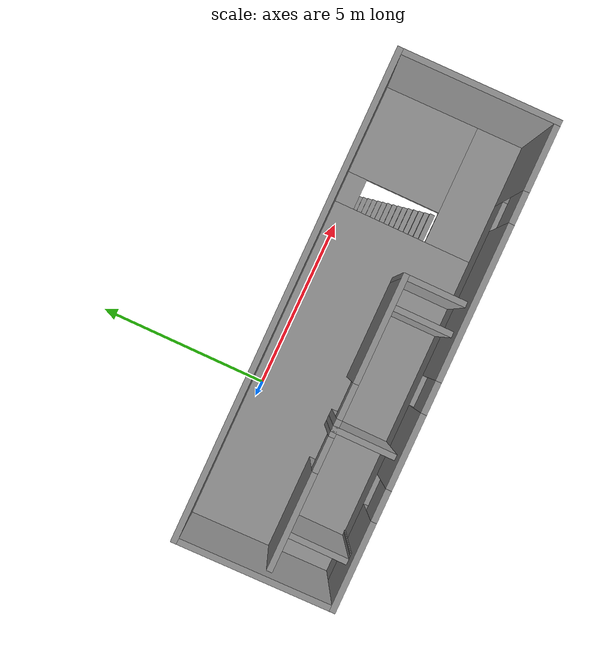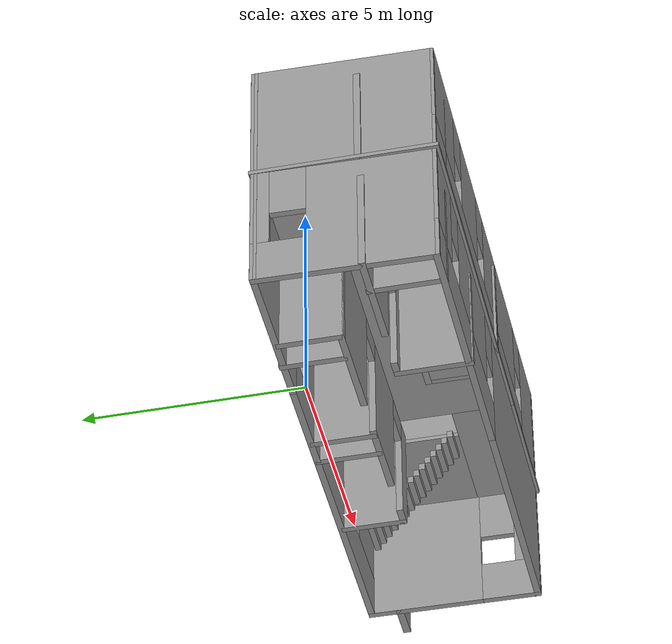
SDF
<?xml version='1.0'?>
<sdf version='1.7'>
  <model name='E7020'>
    <pose>2.43419 -1.66153 0 0 -0 0</pose>
    <link name='Door_2'>
      <collision name='Door_2_Collision'>
        <geometry>
          <box>
            <size>0.9 0.17 2</size>
          </box>
        </geometry>
        <pose>0 0 1 0 -0 0</pose>
      </collision>
      <visual name='Door_2_Visual'>
        <pose>0 0 1 0 -0 0</pose>
        <geometry>
          <box>
            <size>0.9 0.17 2</size>
          </box>
        </geometry>
        <material>
          <script>
            <uri>file://media/materials/scripts/gazebo.material</uri>
            <name>Gazebo/Grey</name>
          </script>
        </material>
      </visual>
      <pose>6.42809 1.33049 0 0 -0 0</pose>
    </link>
    <link name='Floor_0'>
      <pose>-0 -0.000801 3 0 -0 0</pose>
      <visual name='Floor_0_Visual_0'>
        <pose>-1.68723 0 0.05 0 -0 0</pose>
        <geometry>
          <box>
            <size>8.9183 4.1478 0.1</size>
          </box>
        </geometry>
        <material>
          <script>
            <uri>file://media/materials/scripts/gazebo.material</uri>
            <name>Gazebo/Grey</name>
          </script>
          <ambient>1 1 1 1</ambient>
        </material>
        <meta>
          <layer>1</layer>
        </meta>
      </visual>
      <collision name='Floor_0_Collision_0'>
        <geometry>
          <box>
            <size>8.9183 4.1478 0.1</size>
          </box>
        </geometry>
        <pose>-1.68723 0 0.05 0 -0 0</pose>
      </collision>
      <visual name='Floor_0_Visual_1'>
        <pose>4.45915 -1.34484 0.05 0 -0 0</pose>
        <geometry>
          <box>
            <size>3.37446 1.45813 0.1</size>
          </box>
        </geometry>
        <material>
          <script>
            <uri>file://media/materials/scripts/gazebo.material</uri>
            <name>Gazebo/Grey</name>
          </script>
          <ambient>1 1 1 1</ambient>
        </material>
        <meta>
          <layer>1</layer>
        </meta>
      </visual>
      <collision name='Floor_0_Collision_1'>
        <geometry>
          <box>
            <size>3.37446 1.45813 0.1</size>
          </box>
        </geometry>
        <pose>4.45915 -1.34484 0.05 0 -0 0</pose>
      </collision>
      <visual name='Floor_0_Visual_2'>
        <pose>4.8717 0.729063 0.05 0 -0 0</pose>
        <geometry>
          <box>
            <size>2.54936 2.68968 0.1</size>
          </box>
        </geometry>
        <material>
          <script>
            <uri>file://media/materials/scripts/gazebo.material</uri>
            <name>Gazebo/Grey</name>
          </script>
          <ambient>1 1 1 1</ambient>
        </material>
        <meta>
          <layer>1</layer>
        </meta>
      </visual>
      <collision name='Floor_0_Collision_2'>
        <geometry>
          <box>
            <size>2.54936 2.68968 0.1</size>
          </box>
        </geometry>
        <pose>4.8717 0.729063 0.05 0 -0 0</pose>
      </collision>
      <visual name='Floor_0_Visual_3'>
        <pose>3.18447 1.73574 0.05 0 -0 0</pose>
        <geometry>
          <box>
            <size>0.825099 0.676332 0.1</size>
          </box>
        </geometry>
        <material>
          <script>
            <uri>file://media/materials/scripts/gazebo.material</uri>
            <name>Gazebo/Grey</name>
          </script>
          <ambient>1 1 1 1</ambient>
        </material>
        <meta>
          <layer>1</layer>
        </meta>
      </visual>
      <collision name='Floor_0_Collision_3'>
        <geometry>
          <box>
            <size>0.825099 0.676332 0.1</size>
          </box>
        </geometry>
        <pose>3.18447 1.73574 0.05 0 -0 0</pose>
      </collision>
    </link>
    <link name='Stairs_1'>
      <visual name='Stairs_1_Visual_0'>
        <pose>3.18447 1.32966 0.083333 0 -0 0</pose>
        <geometry>
          <box>
            <size>0.825099 0.134223 0.166667</size>
          </box>
        </geometry>
        <material>
          <script>
            <uri>file://media/materials/scripts/gazebo.material</uri>
            <name>Gazebo/Grey</name>
          </script>
          <ambient>1 1 1 1</ambient>
        </material>
        <meta>
          <layer>0</layer>
        </meta>
      </visual>
      <collision name='Stairs_1_Collision_0'>
        <geometry>
          <box>
            <size>0.825099 0.134223 0.166667</size>
          </box>
        </geometry>
        <pose>3.18447 1.32966 0.083333 0 -0 0</pose>
      </collision>
      <visual name='Stairs_1_Visual_1'>
        <pose>3.18447 1.19543 0.25 0 -0 0</pose>
        <geometry>
          <box>
            <size>0.825099 0.134223 0.166667</size>
          </box>
        </geometry>
        <material>
          <script>
            <uri>file://media/materials/scripts/gazebo.material</uri>
            <name>Gazebo/Grey</name>
          </script>
          <ambient>1 1 1 1</ambient>
        </material>
        <meta>
          <layer>0</layer>
        </meta>
      </visual>
      <collision name='Stairs_1_Collision_1'>
        <geometry>
          <box>
            <size>0.825099 0.134223 0.166667</size>
          </box>
        </geometry>
        <pose>3.18447 1.19543 0.25 0 -0 0</pose>
      </collision>
      <visual name='Stairs_1_Visual_2'>
        <pose>3.18447 1.06121 0.416667 0 -0 0</pose>
        <geometry>
          <box>
            <size>0.825099 0.134223 0.166667</size>
          </box>
        </geometry>
        <material>
          <script>
            <uri>file://media/materials/scripts/gazebo.material</uri>
            <name>Gazebo/Grey</name>
          </script>
          <ambient>1 1 1 1</ambient>
        </material>
        <meta>
          <layer>0</layer>
        </meta>
      </visual>
      <collision name='Stairs_1_Collision_2'>
        <geometry>
          <box>
            <size>0.825099 0.134223 0.166667</size>
          </box>
        </geometry>
        <pose>3.18447 1.06121 0.416667 0 -0 0</pose>
      </collision>
      <visual name='Stairs_1_Visual_3'>
        <pose>3.18447 0.926988 0.583333 0 -0 0</pose>
        <geometry>
          <box>
            <size>0.825099 0.134223 0.166667</size>
          </box>
        </geometry>
        <material>
          <script>
            <uri>file://media/materials/scripts/gazebo.material</uri>
            <name>Gazebo/Grey</name>
          </script>
          <ambient>1 1 1 1</ambient>
        </material>
        <meta>
          <layer>0</layer>
        </meta>
      </visual>
      <collision name='Stairs_1_Collision_3'>
        <geometry>
          <box>
            <size>0.825099 0.134223 0.166667</size>
          </box>
        </geometry>
        <pose>3.18447 0.926988 0.583333 0 -0 0</pose>
      </collision>
      <visual name='Stairs_1_Visual_4'>
        <pose>3.18447 0.792765 0.75 0 -0 0</pose>
        <geometry>
          <box>
            <size>0.825099 0.134223 0.166667</size>
          </box>
        </geometry>
        <material>
          <script>
            <uri>file://media/materials/scripts/gazebo.material</uri>
            <name>Gazebo/Grey</name>
          </script>
          <ambient>1 1 1 1</ambient>
        </material>
        <meta>
          <layer>0</layer>
        </meta>
      </visual>
      <collision name='Stairs_1_Collision_4'>
        <geometry>
          <box>
            <size>0.825099 0.134223 0.166667</size>
          </box>
        </geometry>
        <pose>3.18447 0.792765 0.75 0 -0 0</pose>
      </collision>
      <visual name='Stairs_1_Visual_5'>
        <pose>3.18447 0.658542 0.916667 0 -0 0</pose>
        <geometry>
          <box>
            <size>0.825099 0.134223 0.166667</size>
          </box>
        </geometry>
        <material>
          <script>
            <uri>file://media/materials/scripts/gazebo.material</uri>
            <name>Gazebo/Grey</name>
          </script>
          <ambient>1 1 1 1</ambient>
        </material>
        <meta>
          <layer>0</layer>
        </meta>
      </visual>
      <collision name='Stairs_1_Collision_5'>
        <geometry>
          <box>
            <size>0.825099 0.134223 0.166667</size>
          </box>
        </geometry>
        <pose>3.18447 0.658542 0.916667 0 -0 0</pose>
      </collision>
      <visual name='Stairs_1_Visual_6'>
        <pose>3.18447 0.524319 1.08333 0 -0 0</pose>
        <geometry>
          <box>
            <size>0.825099 0.134223 0.166667</size>
          </box>
        </geometry>
        <material>
          <script>
            <uri>file://media/materials/scripts/gazebo.material</uri>
            <name>Gazebo/Grey</name>
          </script>
          <ambient>1 1 1 1</ambient>
        </material>
        <meta>
          <layer>0</layer>
        </meta>
      </visual>
      <collision name='Stairs_1_Collision_6'>
        <geometry>
          <box>
            <size>0.825099 0.134223 0.166667</size>
          </box>
        </geometry>
        <pose>3.18447 0.524319 1.08333 0 -0 0</pose>
      </collision>
      <visual name='Stairs_1_Visual_7'>
        <pose>3.18447 0.390096 1.25 0 -0 0</pose>
        <geometry>
          <box>
            <size>0.825099 0.134223 0.166667</size>
          </box>
        </geometry>
        <material>
          <script>
            <uri>file://media/materials/scripts/gazebo.material</uri>
            <name>Gazebo/Grey</name>
          </script>
          <ambient>1 1 1 1</ambient>
        </material>
        <meta>
          <layer>0</layer>
        </meta>
      </visual>
      <collision name='Stairs_1_Collision_7'>
        <geometry>
          <box>
            <size>0.825099 0.134223 0.166667</size>
          </box>
        </geometry>
        <pose>3.18447 0.390096 1.25 0 -0 0</pose>
      </collision>
      <visual name='Stairs_1_Visual_8'>
        <pose>3.18447 0.255873 1.41667 0 -0 0</pose>
        <geometry>
          <box>
            <size>0.825099 0.134223 0.166667</size>
          </box>
        </geometry>
        <material>
          <script>
            <uri>file://media/materials/scripts/gazebo.material</uri>
            <name>Gazebo/Grey</name>
          </script>
          <ambient>1 1 1 1</ambient>
        </material>
        <meta>
          <layer>0</layer>
        </meta>
      </visual>
      <collision name='Stairs_1_Collision_8'>
        <geometry>
          <box>
            <size>0.825099 0.134223 0.166667</size>
          </box>
        </geometry>
        <pose>3.18447 0.255873 1.41667 0 -0 0</pose>
      </collision>
      <visual name='Stairs_1_Visual_9'>
        <pose>3.18447 0.12165 1.58333 0 -0 0</pose>
        <geometry>
          <box>
            <size>0.825099 0.134223 0.166667</size>
          </box>
        </geometry>
        <material>
          <script>
            <uri>file://media/materials/scripts/gazebo.material</uri>
            <name>Gazebo/Grey</name>
          </script>
          <ambient>1 1 1 1</ambient>
        </material>
        <meta>
          <layer>0</layer>
        </meta>
      </visual>
      <collision name='Stairs_1_Collision_9'>
        <geometry>
          <box>
            <size>0.825099 0.134223 0.166667</size>
          </box>
        </geometry>
        <pose>3.18447 0.12165 1.58333 0 -0 0</pose>
      </collision>
      <visual name='Stairs_1_Visual_10'>
        <pose>3.18447 -0.012573 1.75 0 -0 0</pose>
        <geometry>
          <box>
            <size>0.825099 0.134223 0.166667</size>
          </box>
        </geometry>
        <material>
          <script>
            <uri>file://media/materials/scripts/gazebo.material</uri>
            <name>Gazebo/Grey</name>
          </script>
          <ambient>1 1 1 1</ambient>
        </material>
        <meta>
          <layer>0</layer>
        </meta>
      </visual>
      <collision name='Stairs_1_Collision_10'>
        <geometry>
          <box>
            <size>0.825099 0.134223 0.166667</size>
          </box>
        </geometry>
        <pose>3.18447 -0.012573 1.75 0 -0 0</pose>
      </collision>
      <visual name='Stairs_1_Visual_11'>
        <pose>3.18447 -0.146796 1.91667 0 -0 0</pose>
        <geometry>
          <box>
            <size>0.825099 0.134223 0.166667</size>
          </box>
        </geometry>
        <material>
          <script>
            <uri>file://media/materials/scripts/gazebo.material</uri>
            <name>Gazebo/Grey</name>
          </script>
          <ambient>1 1 1 1</ambient>
        </material>
        <meta>
          <layer>0</layer>
        </meta>
      </visual>
      <collision name='Stairs_1_Collision_11'>
        <geometry>
          <box>
            <size>0.825099 0.134223 0.166667</size>
          </box>
        </geometry>
        <pose>3.18447 -0.146796 1.91667 0 -0 0</pose>
      </collision>
      <visual name='Stairs_1_Visual_12'>
        <pose>3.18447 -0.281019 2.08333 0 -0 0</pose>
        <geometry>
          <box>
            <size>0.825099 0.134223 0.166667</size>
          </box>
        </geometry>
        <material>
          <script>
            <uri>file://media/materials/scripts/gazebo.material</uri>
            <name>Gazebo/Grey</name>
          </script>
          <ambient>1 1 1 1</ambient>
        </material>
        <meta>
          <layer>0</layer>
        </meta>
      </visual>
      <collision name='Stairs_1_Collision_12'>
        <geometry>
          <box>
            <size>0.825099 0.134223 0.166667</size>
          </box>
        </geometry>
        <pose>3.18447 -0.281019 2.08333 0 -0 0</pose>
      </collision>
      <visual name='Stairs_1_Visual_13'>
        <pose>3.18447 -0.415242 2.25 0 -0 0</pose>
        <geometry>
          <box>
            <size>0.825099 0.134223 0.166667</size>
          </box>
        </geometry>
        <material>
          <script>
            <uri>file://media/materials/scripts/gazebo.material</uri>
            <name>Gazebo/Grey</name>
          </script>
          <ambient>1 1 1 1</ambient>
        </material>
        <meta>
          <layer>0</layer>
        </meta>
      </visual>
      <collision name='Stairs_1_Collision_13'>
        <geometry>
          <box>
            <size>0.825099 0.134223 0.166667</size>
          </box>
        </geometry>
        <pose>3.18447 -0.415242 2.25 0 -0 0</pose>
      </collision>
      <visual name='Stairs_1_Visual_14'>
        <pose>3.18447 -0.549465 2.41667 0 -0 0</pose>
        <geometry>
          <box>
            <size>0.825099 0.134223 0.166667</size>
          </box>
        </geometry>
        <material>
          <script>
            <uri>file://media/materials/scripts/gazebo.material</uri>
            <name>Gazebo/Grey</name>
          </script>
          <ambient>1 1 1 1</ambient>
        </material>
        <meta>
          <layer>0</layer>
        </meta>
      </visual>
      <collision name='Stairs_1_Collision_14'>
        <geometry>
          <box>
            <size>0.825099 0.134223 0.166667</size>
          </box>
        </geometry>
        <pose>3.18447 -0.549465 2.41667 0 -0 0</pose>
      </collision>
    </link>
    <link name='Wall_10'>
      <pose>6.05581 0.03503 0 0 -0 -1.56315</pose>
      <visual name='Wall_10_Visual_0'>
        <pose>-0.679473 0 1.5 0 -0 0</pose>
        <geometry>
          <box>
            <size>2.71617 0.15 3</size>
          </box>
        </geometry>
        <material>
          <script>
            <uri>file://media/materials/scripts/gazebo.material</uri>
            <name>Gazebo/Grey</name>
          </script>
          <ambient>1 1 1 1</ambient>
        </material>
        <meta>
          <layer>0</layer>
        </meta>
      </visual>
      <collision name='Wall_10_Collision_0'>
        <geometry>
          <box>
            <size>2.71617 0.15 3</size>
          </box>
        </geometry>
        <pose>-0.679473 0 1.5 0 -0 0</pose>
      </collision>
      <visual name='Wall_10_Visual_1'>
        <pose>1.35808 0 0.5 0 -0 0</pose>
        <geometry>
          <box>
            <size>1.35895 0.15 1</size>
          </box>
        </geometry>
        <material>
          <script>
            <uri>file://media/materials/scripts/gazebo.material</uri>
            <name>Gazebo/Grey</name>
          </script>
          <ambient>1 1 1 1</ambient>
        </material>
        <meta>
          <layer>0</layer>
        </meta>
      </visual>
      <collision name='Wall_10_Collision_1'>
        <geometry>
          <box>
            <size>1.35895 0.15 1</size>
          </box>
        </geometry>
        <pose>1.35808 0 0.5 0 -0 0</pose>
      </collision>
      <visual name='Wall_10_Visual_2'>
        <pose>1.75808 0 2 0 -0 0</pose>
        <geometry>
          <box>
            <size>0.558947 0.15 2</size>
          </box>
        </geometry>
        <material>
          <script>
            <uri>file://media/materials/scripts/gazebo.material</uri>
            <name>Gazebo/Grey</name>
          </script>
          <ambient>1 1 1 1</ambient>
        </material>
        <meta>
          <layer>0</layer>
        </meta>
      </visual>
      <collision name='Wall_10_Collision_2'>
        <geometry>
          <box>
            <size>0.558947 0.15 2</size>
          </box>
        </geometry>
        <pose>1.75808 0 2 0 -0 0</pose>
      </collision>
      <visual name='Wall_10_Visual_3'>
        <pose>1.07861 0 2.4 0 -0 0</pose>
        <geometry>
          <box>
            <size>0.8 0.15 1.2</size>
          </box>
        </geometry>
        <material>
          <script>
            <uri>file://media/materials/scripts/gazebo.material</uri>
            <name>Gazebo/Grey</name>
          </script>
          <ambient>1 1 1 1</ambient>
        </material>
        <meta>
          <layer>0</layer>
        </meta>
      </visual>
      <collision name='Wall_10_Collision_3'>
        <geometry>
          <box>
            <size>0.8 0.15 1.2</size>
          </box>
        </geometry>
        <pose>1.07861 0 2.4 0 -0 0</pose>
      </collision>
    </link>
    <link name='Wall_11'>
      <pose>0.041307 -1.92997 0 0 -0 -3.14118</pose>
      <visual name='Wall_11_Visual_0'>
        <pose>-3.15727 0 1.5 0 -0 0</pose>
        <geometry>
          <box>
            <size>5.8951 0.15 3</size>
          </box>
        </geometry>
        <material>
          <script>
            <uri>file://media/materials/scripts/gazebo.material</uri>
            <name>Gazebo/Grey</name>
          </script>
          <ambient>1 1 1 1</ambient>
        </material>
        <meta>
          <layer>0</layer>
        </meta>
      </visual>
      <collision name='Wall_11_Collision_0'>
        <geometry>
          <box>
            <size>5.8951 0.15 3</size>
          </box>
        </geometry>
        <pose>-3.15727 0 1.5 0 -0 0</pose>
      </collision>
      <visual name='Wall_11_Visual_1'>
        <pose>2.94755 0 0.5 0 -0 0</pose>
        <geometry>
          <box>
            <size>6.31453 0.15 1</size>
          </box>
        </geometry>
        <material>
          <script>
            <uri>file://media/materials/scripts/gazebo.material</uri>
            <name>Gazebo/Grey</name>
          </script>
          <ambient>1 1 1 1</ambient>
        </material>
        <meta>
          <layer>0</layer>
        </meta>
      </visual>
      <collision name='Wall_11_Collision_1'>
        <geometry>
          <box>
            <size>6.31453 0.15 1</size>
          </box>
        </geometry>
        <pose>2.94755 0 0.5 0 -0 0</pose>
      </collision>
      <visual name='Wall_11_Visual_2'>
        <pose>2.19157 0 2 0 -0 0</pose>
        <geometry>
          <box>
            <size>3.20257 0.15 2</size>
          </box>
        </geometry>
        <material>
          <script>
            <uri>file://media/materials/scripts/gazebo.material</uri>
            <name>Gazebo/Grey</name>
          </script>
          <ambient>1 1 1 1</ambient>
        </material>
        <meta>
          <layer>0</layer>
        </meta>
      </visual>
      <collision name='Wall_11_Collision_2'>
        <geometry>
          <box>
            <size>3.20257 0.15 2</size>
          </box>
        </geometry>
        <pose>2.19157 0 2 0 -0 0</pose>
      </collision>
      <visual name='Wall_11_Visual_3'>
        <pose>5.34883 0 2 0 -0 0</pose>
        <geometry>
          <box>
            <size>1.51196 0.15 2</size>
          </box>
        </geometry>
        <material>
          <script>
            <uri>file://media/materials/scripts/gazebo.material</uri>
            <name>Gazebo/Grey</name>
          </script>
          <ambient>1 1 1 1</ambient>
        </material>
        <meta>
          <layer>0</layer>
        </meta>
      </visual>
      <collision name='Wall_11_Collision_3'>
        <geometry>
          <box>
            <size>1.51196 0.15 2</size>
          </box>
        </geometry>
        <pose>5.34883 0 2 0 -0 0</pose>
      </collision>
      <visual name='Wall_11_Visual_4'>
        <pose>0.190282 0 2.4 0 -0 0</pose>
        <geometry>
          <box>
            <size>0.8 0.15 1.2</size>
          </box>
        </geometry>
        <material>
          <script>
            <uri>file://media/materials/scripts/gazebo.material</uri>
            <name>Gazebo/Grey</name>
          </script>
          <ambient>1 1 1 1</ambient>
        </material>
        <meta>
          <layer>0</layer>
        </meta>
      </visual>
      <collision name='Wall_11_Collision_4'>
        <geometry>
          <box>
            <size>0.8 0.15 1.2</size>
          </box>
        </geometry>
        <pose>0.190282 0 2.4 0 -0 0</pose>
      </collision>
      <visual name='Wall_11_Visual_5'>
        <pose>4.19285 0 2.4 0 -0 0</pose>
        <geometry>
          <box>
            <size>0.8 0.15 1.2</size>
          </box>
        </geometry>
        <material>
          <script>
            <uri>file://media/materials/scripts/gazebo.material</uri>
            <name>Gazebo/Grey</name>
          </script>
          <ambient>1 1 1 1</ambient>
        </material>
        <meta>
          <layer>0</layer>
        </meta>
      </visual>
      <collision name='Wall_11_Collision_5'>
        <geometry>
          <box>
            <size>0.8 0.15 1.2</size>
          </box>
        </geometry>
        <pose>4.19285 0 2.4 0 -0 0</pose>
      </collision>
    </link>
    <link name='Wall_12'>
      <pose>-6.02619 0.01503 0 0 -0 1.59031</pose>
      <visual name='Wall_12_Visual_0'>
        <pose>-0.608642 0 1.5 0 -0 0</pose>
        <geometry>
          <box>
            <size>2.82846 0.15 3</size>
          </box>
        </geometry>
        <material>
          <script>
            <uri>file://media/materials/scripts/gazebo.material</uri>
            <name>Gazebo/Grey</name>
          </script>
          <ambient>1 1 1 1</ambient>
        </material>
        <meta>
          <layer>0</layer>
        </meta>
      </visual>
      <collision name='Wall_12_Collision_0'>
        <geometry>
          <box>
            <size>2.82846 0.15 3</size>
          </box>
        </geometry>
        <pose>-0.608642 0 1.5 0 -0 0</pose>
      </collision>
      <visual name='Wall_12_Visual_1'>
        <pose>1.41423 0 0.5 0 -0 0</pose>
        <geometry>
          <box>
            <size>1.21728 0.15 1</size>
          </box>
        </geometry>
        <material>
          <script>
            <uri>file://media/materials/scripts/gazebo.material</uri>
            <name>Gazebo/Grey</name>
          </script>
          <ambient>1 1 1 1</ambient>
        </material>
        <meta>
          <layer>0</layer>
        </meta>
      </visual>
      <collision name='Wall_12_Collision_1'>
        <geometry>
          <box>
            <size>1.21728 0.15 1</size>
          </box>
        </geometry>
        <pose>1.41423 0 0.5 0 -0 0</pose>
      </collision>
      <visual name='Wall_12_Visual_2'>
        <pose>1.81423 0 2 0 -0 0</pose>
        <geometry>
          <box>
            <size>0.417283 0.15 2</size>
          </box>
        </geometry>
        <material>
          <script>
            <uri>file://media/materials/scripts/gazebo.material</uri>
            <name>Gazebo/Grey</name>
          </script>
          <ambient>1 1 1 1</ambient>
        </material>
        <meta>
          <layer>0</layer>
        </meta>
      </visual>
      <collision name='Wall_12_Collision_2'>
        <geometry>
          <box>
            <size>0.417283 0.15 2</size>
          </box>
        </geometry>
        <pose>1.81423 0 2 0 -0 0</pose>
      </collision>
      <visual name='Wall_12_Visual_3'>
        <pose>1.20559 0 2.4 0 -0 0</pose>
        <geometry>
          <box>
            <size>0.8 0.15 1.2</size>
          </box>
        </geometry>
        <material>
          <script>
            <uri>file://media/materials/scripts/gazebo.material</uri>
            <name>Gazebo/Grey</name>
          </script>
          <ambient>1 1 1 1</ambient>
        </material>
        <meta>
          <layer>0</layer>
        </meta>
      </visual>
      <collision name='Wall_12_Collision_3'>
        <geometry>
          <box>
            <size>0.8 0.15 1.2</size>
          </box>
        </geometry>
        <pose>1.20559 0 2.4 0 -0 0</pose>
      </collision>
    </link>
    <link name='Wall_14'>
      <collision name='Wall_14_Collision'>
        <geometry>
          <box>
            <size>12.2551 0.15 3</size>
          </box>
        </geometry>
        <pose>0 0 1.5 0 -0 0</pose>
      </collision>
      <visual name='Wall_14_Visual'>
        <pose>0 0 1.5 0 -0 0</pose>
        <geometry>
          <box>
            <size>12.2551 0.15 3</size>
          </box>
        </geometry>
        <material>
          <script>
            <uri>file://media/materials/scripts/gazebo.material</uri>
            <name>Gazebo/Grey</name>
          </script>
          <ambient>1 1 1 1</ambient>
        </material>
        <meta>
          <layer>1</layer>
        </meta>
      </visual>
      <pose>-0.011693 1.98003 3 0 -0 0.002891</pose>
    </link>
    <link name='Wall_15'>
      <collision name='Wall_15_Collision'>
        <geometry>
          <box>
            <size>4.07512 0.15 3</size>
          </box>
        </geometry>
        <pose>0 0 1.5 0 -0 0</pose>
      </collision>
      <visual name='Wall_15_Visual'>
        <pose>0 0 1.5 0 -0 0</pose>
        <geometry>
          <box>
            <size>4.07512 0.15 3</size>
          </box>
        </geometry>
        <material>
          <script>
            <uri>file://media/materials/scripts/gazebo.material</uri>
            <name>Gazebo/Grey</name>
          </script>
          <ambient>1 1 1 1</ambient>
        </material>
        <meta>
          <layer>1</layer>
        </meta>
      </visual>
      <pose>6.05581 0.03503 3 0 -0 -1.56315</pose>
    </link>
    <link name='Wall_16'>
      <pose>0.041307 -1.92997 3 0 -0 -3.14118</pose>
      <visual name='Wall_16_Visual_0'>
        <pose>-5.20681 0 1.5 0 -0 0</pose>
        <geometry>
          <box>
            <size>1.79539 0.15 3</size>
          </box>
        </geometry>
        <material>
          <script>
            <uri>file://media/materials/scripts/gazebo.material</uri>
            <name>Gazebo/Grey</name>
          </script>
          <ambient>1 1 1 1</ambient>
        </material>
        <meta>
          <layer>1</layer>
        </meta>
      </visual>
      <collision name='Wall_16_Collision_0'>
        <geometry>
          <box>
            <size>1.79539 0.15 3</size>
          </box>
        </geometry>
        <pose>-5.20681 0 1.5 0 -0 0</pose>
      </collision>
      <visual name='Wall_16_Visual_1'>
        <pose>0.897696 0 0.5 0 -0 0</pose>
        <geometry>
          <box>
            <size>10.4136 0.15 1</size>
          </box>
        </geometry>
        <material>
          <script>
            <uri>file://media/materials/scripts/gazebo.material</uri>
            <name>Gazebo/Grey</name>
          </script>
          <ambient>1 1 1 1</ambient>
        </material>
        <meta>
          <layer>1</layer>
        </meta>
      </visual>
      <collision name='Wall_16_Collision_1'>
        <geometry>
          <box>
            <size>10.4136 0.15 1</size>
          </box>
        </geometry>
        <pose>0.897696 0 0.5 0 -0 0</pose>
      </collision>
      <visual name='Wall_16_Visual_2'>
        <pose>-1.55669 0 2 0 -0 0</pose>
        <geometry>
          <box>
            <size>3.90483 0.15 2</size>
          </box>
        </geometry>
        <material>
          <script>
            <uri>file://media/materials/scripts/gazebo.material</uri>
            <name>Gazebo/Grey</name>
          </script>
          <ambient>1 1 1 1</ambient>
        </material>
        <meta>
          <layer>1</layer>
        </meta>
      </visual>
      <collision name='Wall_16_Collision_2'>
        <geometry>
          <box>
            <size>3.90483 0.15 2</size>
          </box>
        </geometry>
        <pose>-1.55669 0 2 0 -0 0</pose>
      </collision>
      <visual name='Wall_16_Visual_3'>
        <pose>2.13371 0 2 0 -0 0</pose>
        <geometry>
          <box>
            <size>1.87598 0.15 2</size>
          </box>
        </geometry>
        <material>
          <script>
            <uri>file://media/materials/scripts/gazebo.material</uri>
            <name>Gazebo/Grey</name>
          </script>
          <ambient>1 1 1 1</ambient>
        </material>
        <meta>
          <layer>1</layer>
        </meta>
      </visual>
      <collision name='Wall_16_Collision_3'>
        <geometry>
          <box>
            <size>1.87598 0.15 2</size>
          </box>
        </geometry>
        <pose>2.13371 0 2 0 -0 0</pose>
      </collision>
      <visual name='Wall_16_Visual_4'>
        <pose>4.9881 0 2 0 -0 0</pose>
        <geometry>
          <box>
            <size>2.2328 0.15 2</size>
          </box>
        </geometry>
        <material>
          <script>
            <uri>file://media/materials/scripts/gazebo.material</uri>
            <name>Gazebo/Grey</name>
          </script>
          <ambient>1 1 1 1</ambient>
        </material>
        <meta>
          <layer>1</layer>
        </meta>
      </visual>
      <collision name='Wall_16_Collision_4'>
        <geometry>
          <box>
            <size>2.2328 0.15 2</size>
          </box>
        </geometry>
        <pose>4.9881 0 2 0 -0 0</pose>
      </collision>
      <visual name='Wall_16_Visual_5'>
        <pose>-3.90911 0 2.4 0 -0 0</pose>
        <geometry>
          <box>
            <size>0.8 0.15 1.2</size>
          </box>
        </geometry>
        <material>
          <script>
            <uri>file://media/materials/scripts/gazebo.material</uri>
            <name>Gazebo/Grey</name>
          </script>
          <ambient>1 1 1 1</ambient>
        </material>
        <meta>
          <layer>1</layer>
        </meta>
      </visual>
      <collision name='Wall_16_Collision_5'>
        <geometry>
          <box>
            <size>0.8 0.15 1.2</size>
          </box>
        </geometry>
        <pose>-3.90911 0 2.4 0 -0 0</pose>
      </collision>
      <visual name='Wall_16_Visual_6'>
        <pose>0.795724 0 2.4 0 -0 0</pose>
        <geometry>
          <box>
            <size>0.8 0.15 1.2</size>
          </box>
        </geometry>
        <material>
          <script>
            <uri>file://media/materials/scripts/gazebo.material</uri>
            <name>Gazebo/Grey</name>
          </script>
          <ambient>1 1 1 1</ambient>
        </material>
        <meta>
          <layer>1</layer>
        </meta>
      </visual>
      <collision name='Wall_16_Collision_6'>
        <geometry>
          <box>
            <size>0.8 0.15 1.2</size>
          </box>
        </geometry>
        <pose>0.795724 0 2.4 0 -0 0</pose>
      </collision>
      <visual name='Wall_16_Visual_7'>
        <pose>3.4717 0 2.4 0 -0 0</pose>
        <geometry>
          <box>
            <size>0.8 0.15 1.2</size>
          </box>
        </geometry>
        <material>
          <script>
            <uri>file://media/materials/scripts/gazebo.material</uri>
            <name>Gazebo/Grey</name>
          </script>
          <ambient>1 1 1 1</ambient>
        </material>
        <meta>
          <layer>1</layer>
        </meta>
      </visual>
      <collision name='Wall_16_Collision_7'>
        <geometry>
          <box>
            <size>0.8 0.15 1.2</size>
          </box>
        </geometry>
        <pose>3.4717 0 2.4 0 -0 0</pose>
      </collision>
    </link>
    <link name='Wall_17'>
      <collision name='Wall_17_Collision'>
        <geometry>
          <box>
            <size>4.04574 0.15 3</size>
          </box>
        </geometry>
        <pose>0 0 1.5 0 -0 0</pose>
      </collision>
      <visual name='Wall_17_Visual'>
        <pose>0 0 1.5 0 -0 0</pose>
        <geometry>
          <box>
            <size>4.04574 0.15 3</size>
          </box>
        </geometry>
        <material>
          <script>
            <uri>file://media/materials/scripts/gazebo.material</uri>
            <name>Gazebo/Grey</name>
          </script>
          <ambient>1 1 1 1</ambient>
        </material>
        <meta>
          <layer>1</layer>
        </meta>
      </visual>
      <pose>-6.02619 0.01503 3 0 -0 1.59031</pose>
    </link>
    <link name='Wall_18'>
      <collision name='Wall_18_Collision'>
        <geometry>
          <box>
            <size>1.5 0.15 2.5</size>
          </box>
        </geometry>
        <pose>0 0 1.25 0 -0 0</pose>
      </collision>
      <visual name='Wall_18_Visual'>
        <pose>0 0 1.25 0 -0 0</pose>
        <geometry>
          <box>
            <size>1.5 0.15 2.5</size>
          </box>
        </geometry>
        <material>
          <script>
            <uri>file://media/materials/scripts/gazebo.material</uri>
            <name>Gazebo/Grey</name>
          </script>
          <ambient>1 1 1 1</ambient>
        </material>
        <meta>
          <layer>0</layer>
        </meta>
      </visual>
      <pose>2.69114 1.23399 0 0 -0 -1.5708</pose>
    </link>
    <link name='Wall_19'>
      <pose>-0.608857 0.558986 0 0 -0 3.14159</pose>
      <visual name='Wall_19_Visual_0'>
        <pose>-3.1165 0 1.25 0 -0 0</pose>
        <geometry>
          <box>
            <size>0.516993 0.15 2.5</size>
          </box>
        </geometry>
        <material>
          <script>
            <uri>file://media/materials/scripts/gazebo.material</uri>
            <name>Gazebo/Grey</name>
          </script>
          <ambient>1 1 1 1</ambient>
        </material>
        <meta>
          <layer>0</layer>
        </meta>
      </visual>
      <collision name='Wall_19_Collision_0'>
        <geometry>
          <box>
            <size>0.516993 0.15 2.5</size>
          </box>
        </geometry>
        <pose>-3.1165 0 1.25 0 -0 0</pose>
      </collision>
      <visual name='Wall_19_Visual_1'>
        <pose>-0.956332 0 1.25 0 -0 0</pose>
        <geometry>
          <box>
            <size>2.00335 0.15 2.5</size>
          </box>
        </geometry>
        <material>
          <script>
            <uri>file://media/materials/scripts/gazebo.material</uri>
            <name>Gazebo/Grey</name>
          </script>
          <ambient>1 1 1 1</ambient>
        </material>
        <meta>
          <layer>0</layer>
        </meta>
      </visual>
      <collision name='Wall_19_Collision_1'>
        <geometry>
          <box>
            <size>2.00335 0.15 2.5</size>
          </box>
        </geometry>
        <pose>-0.956332 0 1.25 0 -0 0</pose>
      </collision>
      <visual name='Wall_19_Visual_2'>
        <pose>2.16017 0 1.25 0 -0 0</pose>
        <geometry>
          <box>
            <size>2.42966 0.15 2.5</size>
          </box>
        </geometry>
        <material>
          <script>
            <uri>file://media/materials/scripts/gazebo.material</uri>
            <name>Gazebo/Grey</name>
          </script>
          <ambient>1 1 1 1</ambient>
        </material>
        <meta>
          <layer>0</layer>
        </meta>
      </visual>
      <collision name='Wall_19_Collision_2'>
        <geometry>
          <box>
            <size>2.42966 0.15 2.5</size>
          </box>
        </geometry>
        <pose>2.16017 0 1.25 0 -0 0</pose>
      </collision>
      <visual name='Wall_19_Visual_3'>
        <pose>-2.40801 0 2.25 0 -0 0</pose>
        <geometry>
          <box>
            <size>0.9 0.15 0.5</size>
          </box>
        </geometry>
        <material>
          <script>
            <uri>file://media/materials/scripts/gazebo.material</uri>
            <name>Gazebo/Grey</name>
          </script>
          <ambient>1 1 1 1</ambient>
        </material>
        <meta>
          <layer>0</layer>
        </meta>
      </visual>
      <collision name='Wall_19_Collision_3'>
        <geometry>
          <box>
            <size>0.9 0.15 0.5</size>
          </box>
        </geometry>
        <pose>-2.40801 0 2.25 0 -0 0</pose>
      </collision>
      <visual name='Wall_19_Visual_4'>
        <pose>0.495344 0 2.25 0 -0 0</pose>
        <geometry>
          <box>
            <size>0.9 0.15 0.5</size>
          </box>
        </geometry>
        <material>
          <script>
            <uri>file://media/materials/scripts/gazebo.material</uri>
            <name>Gazebo/Grey</name>
          </script>
          <ambient>1 1 1 1</ambient>
        </material>
        <meta>
          <layer>0</layer>
        </meta>
      </visual>
      <collision name='Wall_19_Collision_4'>
        <geometry>
          <box>
            <size>0.9 0.15 0.5</size>
          </box>
        </geometry>
        <pose>0.495344 0 2.25 0 -0 0</pose>
      </collision>
    </link>
    <link name='Wall_20'>
      <collision name='Wall_20_Collision'>
        <geometry>
          <box>
            <size>1.5 0.15 2.5</size>
          </box>
        </geometry>
        <pose>0 0 1.25 0 -0 0</pose>
      </collision>
      <visual name='Wall_20_Visual'>
        <pose>0 0 1.25 0 -0 0</pose>
        <geometry>
          <box>
            <size>1.5 0.15 2.5</size>
          </box>
        </geometry>
        <material>
          <script>
            <uri>file://media/materials/scripts/gazebo.material</uri>
            <name>Gazebo/Grey</name>
          </script>
          <ambient>1 1 1 1</ambient>
        </material>
        <meta>
          <layer>0</layer>
        </meta>
      </visual>
      <pose>-3.90886 1.23399 0 0 -0 1.5708</pose>
    </link>
    <link name='Wall_22'>
      <collision name='Wall_22_Collision'>
        <geometry>
          <box>
            <size>1.5 0.15 2.5</size>
          </box>
        </geometry>
        <pose>0 0 1.25 0 -0 0</pose>
      </collision>
      <visual name='Wall_22_Visual'>
        <pose>0 0 1.25 0 -0 0</pose>
        <geometry>
          <box>
            <size>1.5 0.15 2.5</size>
          </box>
        </geometry>
        <material>
          <script>
            <uri>file://media/materials/scripts/gazebo.material</uri>
            <name>Gazebo/Grey</name>
          </script>
          <ambient>1 1 1 1</ambient>
        </material>
        <meta>
          <layer>0</layer>
        </meta>
      </visual>
      <pose>-0.474558 1.25474 0 0 -0 1.5708</pose>
    </link>
    <link name='Wall_24'>
      <pose>-4.25389 -0.364722 0 0 -0 0</pose>
      <visual name='Wall_24_Visual_0'>
        <pose>-0.67204 0 1.25 0 -0 0</pose>
        <geometry>
          <box>
            <size>2.40592 0.15 2.5</size>
          </box>
        </geometry>
        <material>
          <script>
            <uri>file://media/materials/scripts/gazebo.material</uri>
            <name>Gazebo/Grey</name>
          </script>
          <ambient>1 1 1 1</ambient>
        </material>
        <meta>
          <layer>0</layer>
        </meta>
      </visual>
      <collision name='Wall_24_Collision_0'>
        <geometry>
          <box>
            <size>2.40592 0.15 2.5</size>
          </box>
        </geometry>
        <pose>-0.67204 0 1.25 0 -0 0</pose>
      </collision>
      <visual name='Wall_24_Visual_1'>
        <pose>1.65296 0 1.25 0 -0 0</pose>
        <geometry>
          <box>
            <size>0.44408 0.15 2.5</size>
          </box>
        </geometry>
        <material>
          <script>
            <uri>file://media/materials/scripts/gazebo.material</uri>
            <name>Gazebo/Grey</name>
          </script>
          <ambient>1 1 1 1</ambient>
        </material>
        <meta>
          <layer>0</layer>
        </meta>
      </visual>
      <collision name='Wall_24_Collision_1'>
        <geometry>
          <box>
            <size>0.44408 0.15 2.5</size>
          </box>
        </geometry>
        <pose>1.65296 0 1.25 0 -0 0</pose>
      </collision>
      <visual name='Wall_24_Visual_2'>
        <pose>0.98092 0 2.25 0 -0 0</pose>
        <geometry>
          <box>
            <size>0.9 0.15 0.5</size>
          </box>
        </geometry>
        <material>
          <script>
            <uri>file://media/materials/scripts/gazebo.material</uri>
            <name>Gazebo/Grey</name>
          </script>
          <ambient>1 1 1 1</ambient>
        </material>
        <meta>
          <layer>0</layer>
        </meta>
      </visual>
      <collision name='Wall_24_Collision_2'>
        <geometry>
          <box>
            <size>0.9 0.15 0.5</size>
          </box>
        </geometry>
        <pose>0.98092 0 2.25 0 -0 0</pose>
      </collision>
    </link>
    <link name='Wall_25'>
      <collision name='Wall_25_Collision'>
        <geometry>
          <box>
            <size>1.75 0.15 2.5</size>
          </box>
        </geometry>
        <pose>0 0 1.25 0 -0 0</pose>
      </collision>
      <visual name='Wall_25_Visual'>
        <pose>0 0 1.25 0 -0 0</pose>
        <geometry>
          <box>
            <size>1.75 0.15 2.5</size>
          </box>
        </geometry>
        <material>
          <script>
            <uri>file://media/materials/scripts/gazebo.material</uri>
            <name>Gazebo/Grey</name>
          </script>
          <ambient>1 1 1 1</ambient>
        </material>
        <meta>
          <layer>0</layer>
        </meta>
      </visual>
      <pose>-2.45389 -1.16472 0 0 -0 -1.5708</pose>
    </link>
    <link name='Wall_27'>
      <collision name='Wall_27_Collision'>
        <geometry>
          <box>
            <size>1.5 0.15 2.5</size>
          </box>
        </geometry>
        <pose>0 0 1.25 0 -0 0</pose>
      </collision>
      <visual name='Wall_27_Visual'>
        <pose>0 0 1.25 0 -0 0</pose>
        <geometry>
          <box>
            <size>1.5 0.15 2.5</size>
          </box>
        </geometry>
        <material>
          <script>
            <uri>file://media/materials/scripts/gazebo.material</uri>
            <name>Gazebo/Grey</name>
          </script>
          <ambient>1 1 1 1</ambient>
        </material>
        <meta>
          <layer>0</layer>
        </meta>
      </visual>
      <pose>-3.20301 1.3247 0 0 -0 1.5708</pose>
    </link>
    <link name='Wall_29'>
      <collision name='Wall_29_Collision'>
        <geometry>
          <box>
            <size>1.5 0.15 2.5</size>
          </box>
        </geometry>
        <pose>0 0 1.25 0 -0 0</pose>
      </collision>
      <visual name='Wall_29_Visual'>
        <pose>0 0 1.25 0 -0 0</pose>
        <geometry>
          <box>
            <size>1.5 0.15 2.5</size>
          </box>
        </geometry>
        <material>
          <script>
            <uri>file://media/materials/scripts/gazebo.material</uri>
            <name>Gazebo/Grey</name>
          </script>
          <ambient>1 1 1 1</ambient>
        </material>
        <meta>
          <layer>0</layer>
        </meta>
      </visual>
      <pose>0.155084 1.27223 0 0 -0 1.5708</pose>
    </link>
    <link name='Wall_31'>
      <collision name='Wall_31_Collision'>
        <geometry>
          <box>
            <size>1.75 0.15 2.5</size>
          </box>
        </geometry>
        <pose>0 0 1.25 0 -0 0</pose>
      </collision>
      <visual name='Wall_31_Visual'>
        <pose>0 0 1.25 0 -0 0</pose>
        <geometry>
          <box>
            <size>1.75 0.15 2.5</size>
          </box>
        </geometry>
        <material>
          <script>
            <uri>file://media/materials/scripts/gazebo.material</uri>
            <name>Gazebo/Grey</name>
          </script>
          <ambient>1 1 1 1</ambient>
        </material>
        <meta>
          <layer>0</layer>
        </meta>
      </visual>
      <pose>-5.21436 -1.13883 0 0 -0 1.5708</pose>
    </link>
    <link name='Wall_33'>
      <pose>-2.27138 -0.312252 3 0 -0 0</pose>
      <visual name='Wall_33_Visual_0'>
        <pose>-2.52337 0 1.25 0 -0 0</pose>
        <geometry>
          <box>
            <size>2.70325 0.15 2.5</size>
          </box>
        </geometry>
        <material>
          <script>
            <uri>file://media/materials/scripts/gazebo.material</uri>
            <name>Gazebo/Grey</name>
          </script>
          <ambient>1 1 1 1</ambient>
        </material>
        <meta>
          <layer>1</layer>
        </meta>
      </visual>
      <collision name='Wall_33_Collision_0'>
        <geometry>
          <box>
            <size>2.70325 0.15 2.5</size>
          </box>
        </geometry>
        <pose>-2.52337 0 1.25 0 -0 0</pose>
      </collision>
      <visual name='Wall_33_Visual_1'>
        <pose>-0.048382 0 1.25 0 -0 0</pose>
        <geometry>
          <box>
            <size>0.446735 0.15 2.5</size>
          </box>
        </geometry>
        <material>
          <script>
            <uri>file://media/materials/scripts/gazebo.material</uri>
            <name>Gazebo/Grey</name>
          </script>
          <ambient>1 1 1 1</ambient>
        </material>
        <meta>
          <layer>1</layer>
        </meta>
      </visual>
      <collision name='Wall_33_Collision_1'>
        <geometry>
          <box>
            <size>0.446735 0.15 2.5</size>
          </box>
        </geometry>
        <pose>-0.048382 0 1.25 0 -0 0</pose>
      </collision>
      <visual name='Wall_33_Visual_2'>
        <pose>2.47499 0 1.25 0 -0 0</pose>
        <geometry>
          <box>
            <size>2.80001 0.15 2.5</size>
          </box>
        </geometry>
        <material>
          <script>
            <uri>file://media/materials/scripts/gazebo.material</uri>
            <name>Gazebo/Grey</name>
          </script>
          <ambient>1 1 1 1</ambient>
        </material>
        <meta>
          <layer>1</layer>
        </meta>
      </visual>
      <collision name='Wall_33_Collision_2'>
        <geometry>
          <box>
            <size>2.80001 0.15 2.5</size>
          </box>
        </geometry>
        <pose>2.47499 0 1.25 0 -0 0</pose>
      </collision>
      <visual name='Wall_33_Visual_3'>
        <pose>-0.721749 0 2.25 0 -0 0</pose>
        <geometry>
          <box>
            <size>0.9 0.15 0.5</size>
          </box>
        </geometry>
        <material>
          <script>
            <uri>file://media/materials/scripts/gazebo.material</uri>
            <name>Gazebo/Grey</name>
          </script>
          <ambient>1 1 1 1</ambient>
        </material>
        <meta>
          <layer>1</layer>
        </meta>
      </visual>
      <collision name='Wall_33_Collision_3'>
        <geometry>
          <box>
            <size>0.9 0.15 0.5</size>
          </box>
        </geometry>
        <pose>-0.721749 0 2.25 0 -0 0</pose>
      </collision>
      <visual name='Wall_33_Visual_4'>
        <pose>0.624986 0 2.25 0 -0 0</pose>
        <geometry>
          <box>
            <size>0.9 0.15 0.5</size>
          </box>
        </geometry>
        <material>
          <script>
            <uri>file://media/materials/scripts/gazebo.material</uri>
            <name>Gazebo/Grey</name>
          </script>
          <ambient>1 1 1 1</ambient>
        </material>
        <meta>
          <layer>1</layer>
        </meta>
      </visual>
      <collision name='Wall_33_Collision_4'>
        <geometry>
          <box>
            <size>0.9 0.15 0.5</size>
          </box>
        </geometry>
        <pose>0.624986 0 2.25 0 -0 0</pose>
      </collision>
    </link>
    <link name='Wall_34'>
      <collision name='Wall_34_Collision'>
        <geometry>
          <box>
            <size>1.75 0.15 2.5</size>
          </box>
        </geometry>
        <pose>0 0 1.25 0 -0 0</pose>
      </collision>
      <visual name='Wall_34_Visual'>
        <pose>0 0 1.25 0 -0 0</pose>
        <geometry>
          <box>
            <size>1.75 0.15 2.5</size>
          </box>
        </geometry>
        <material>
          <script>
            <uri>file://media/materials/scripts/gazebo.material</uri>
            <name>Gazebo/Grey</name>
          </script>
          <ambient>1 1 1 1</ambient>
        </material>
        <meta>
          <layer>1</layer>
        </meta>
      </visual>
      <pose>1.52862 -1.11225 3 0 -0 -1.5708</pose>
    </link>
    <link name='Wall_36'>
      <collision name='Wall_36_Collision'>
        <geometry>
          <box>
            <size>1.75 0.15 2.5</size>
          </box>
        </geometry>
        <pose>0 0 1.25 0 -0 0</pose>
      </collision>
      <visual name='Wall_36_Visual'>
        <pose>0 0 1.25 0 -0 0</pose>
        <geometry>
          <box>
            <size>1.75 0.15 2.5</size>
          </box>
        </geometry>
        <material>
          <script>
            <uri>file://media/materials/scripts/gazebo.material</uri>
            <name>Gazebo/Grey</name>
          </script>
          <ambient>1 1 1 1</ambient>
        </material>
        <meta>
          <layer>1</layer>
        </meta>
      </visual>
      <pose>-2.34599 -1.11225 3 0 -0 -1.5708</pose>
    </link>
    <link name='Wall_38'>
      <collision name='Wall_38_Collision'>
        <geometry>
          <box>
            <size>1.75 0.15 2.5</size>
          </box>
        </geometry>
        <pose>0 0 1.25 0 -0 0</pose>
      </collision>
      <visual name='Wall_38_Visual'>
        <pose>0 0 1.25 0 -0 0</pose>
        <geometry>
          <box>
            <size>1.75 0.15 2.5</size>
          </box>
        </geometry>
        <material>
          <script>
            <uri>file://media/materials/scripts/gazebo.material</uri>
            <name>Gazebo/Grey</name>
          </script>
          <ambient>1 1 1 1</ambient>
        </material>
        <meta>
          <layer>1</layer>
        </meta>
      </visual>
      <pose>-4.98699 -1.12974 3 0 -0 -1.5708</pose>
    </link>
    <link name='Wall_39'>
      <collision name='Wall_39_Collision'>
        <geometry>
          <box>
            <size>0.203506 0.15 2.5</size>
          </box>
        </geometry>
        <pose>0 0 1.25 0 -0 0</pose>
      </collision>
      <visual name='Wall_39_Visual'>
        <pose>0 0 1.25 0 -0 0</pose>
        <geometry>
          <box>
            <size>0.203506 0.15 2.5</size>
          </box>
        </geometry>
        <material>
          <script>
            <uri>file://media/materials/scripts/gazebo.material</uri>
            <name>Gazebo/Grey</name>
          </script>
          <ambient>1 1 1 1</ambient>
        </material>
        <meta>
          <layer>1</layer>
        </meta>
      </visual>
      <pose>-4.85582 -1.9245 3 0 -0 0.197083</pose>
    </link>
    <link name='Wall_40'>
      <collision name='Wall_40_Collision'>
        <geometry>
          <box>
            <size>0.16 0.15 2.5</size>
          </box>
        </geometry>
        <pose>0 0 1.25 0 -0 0</pose>
      </collision>
      <visual name='Wall_40_Visual'>
        <pose>0 0 1.25 0 -0 0</pose>
        <geometry>
          <box>
            <size>0.16 0.15 2.5</size>
          </box>
        </geometry>
        <material>
          <script>
            <uri>file://media/materials/scripts/gazebo.material</uri>
            <name>Gazebo/Grey</name>
          </script>
          <ambient>1 1 1 1</ambient>
        </material>
        <meta>
          <layer>1</layer>
        </meta>
      </visual>
      <pose>-4.85956 -1.91926 3 0 -0 0</pose>
    </link>
    <link name='Wall_42'>
      <collision name='Wall_42_Collision'>
        <geometry>
          <box>
            <size>1.75 0.15 2.5</size>
          </box>
        </geometry>
        <pose>0 0 1.25 0 -0 0</pose>
      </collision>
      <visual name='Wall_42_Visual'>
        <pose>0 0 1.25 0 -0 0</pose>
        <geometry>
          <box>
            <size>1.75 0.15 2.5</size>
          </box>
        </geometry>
        <material>
          <script>
            <uri>file://media/materials/scripts/gazebo.material</uri>
            <name>Gazebo/Grey</name>
          </script>
          <ambient>1 1 1 1</ambient>
        </material>
        <meta>
          <layer>1</layer>
        </meta>
      </visual>
      <pose>0.767236 -1.1997 3 0 -0 -1.5708</pose>
    </link>
    <link name='Wall_43'>
      <collision name='Wall_43_Collision'>
        <geometry>
          <box>
            <size>0.16 0.15 2.5</size>
          </box>
        </geometry>
        <pose>0 0 1.25 0 -0 0</pose>
      </collision>
      <visual name='Wall_43_Visual'>
        <pose>0 0 1.25 0 -0 0</pose>
        <geometry>
          <box>
            <size>0.16 0.15 2.5</size>
          </box>
        </geometry>
        <material>
          <script>
            <uri>file://media/materials/scripts/gazebo.material</uri>
            <name>Gazebo/Grey</name>
          </script>
          <ambient>1 1 1 1</ambient>
        </material>
        <meta>
          <layer>1</layer>
        </meta>
      </visual>
      <pose>0.772236 -1.9997 3 0 -0 0</pose>
    </link>
    <link name='Wall_9'>
      <pose>-0.011693 1.98003 0 0 -0 0.002891</pose>
      <visual name='Wall_9_Visual_0'>
        <pose>-4.19714 0 1.5 0 -0 0</pose>
        <geometry>
          <box>
            <size>3.86058 0.15 3</size>
          </box>
        </geometry>
        <material>
          <script>
            <uri>file://media/materials/scripts/gazebo.material</uri>
            <name>Gazebo/Grey</name>
          </script>
          <ambient>1 1 1 1</ambient>
        </material>
        <meta>
          <layer>0</layer>
        </meta>
      </visual>
      <collision name='Wall_9_Collision_0'>
        <geometry>
          <box>
            <size>3.86058 0.15 3</size>
          </box>
        </geometry>
        <pose>-4.19714 0 1.5 0 -0 0</pose>
      </collision>
      <visual name='Wall_9_Visual_1'>
        <pose>1.93029 0 0.5 0 -0 0</pose>
        <geometry>
          <box>
            <size>8.39429 0.15 1</size>
          </box>
        </geometry>
        <material>
          <script>
            <uri>file://media/materials/scripts/gazebo.material</uri>
            <name>Gazebo/Grey</name>
          </script>
          <ambient>1 1 1 1</ambient>
        </material>
        <meta>
          <layer>0</layer>
        </meta>
      </visual>
      <collision name='Wall_9_Collision_1'>
        <geometry>
          <box>
            <size>8.39429 0.15 1</size>
          </box>
        </geometry>
        <pose>1.93029 0 0.5 0 -0 0</pose>
      </collision>
      <visual name='Wall_9_Visual_2'>
        <pose>-0.348168 0 2 0 -0 0</pose>
        <geometry>
          <box>
            <size>2.23737 0.15 2</size>
          </box>
        </geometry>
        <material>
          <script>
            <uri>file://media/materials/scripts/gazebo.material</uri>
            <name>Gazebo/Grey</name>
          </script>
          <ambient>1 1 1 1</ambient>
        </material>
        <meta>
          <layer>0</layer>
        </meta>
      </visual>
      <collision name='Wall_9_Collision_2'>
        <geometry>
          <box>
            <size>2.23737 0.15 2</size>
          </box>
        </geometry>
        <pose>-0.348168 0 2 0 -0 0</pose>
      </collision>
      <visual name='Wall_9_Visual_3'>
        <pose>2.5378 0 2 0 -0 0</pose>
        <geometry>
          <box>
            <size>1.93457 0.15 2</size>
          </box>
        </geometry>
        <material>
          <script>
            <uri>file://media/materials/scripts/gazebo.material</uri>
            <name>Gazebo/Grey</name>
          </script>
          <ambient>1 1 1 1</ambient>
        </material>
        <meta>
          <layer>0</layer>
        </meta>
      </visual>
      <collision name='Wall_9_Collision_3'>
        <geometry>
          <box>
            <size>1.93457 0.15 2</size>
          </box>
        </geometry>
        <pose>2.5378 0 2 0 -0 0</pose>
      </collision>
      <visual name='Wall_9_Visual_4'>
        <pose>5.21626 0 2 0 -0 0</pose>
        <geometry>
          <box>
            <size>1.82235 0.15 2</size>
          </box>
        </geometry>
        <material>
          <script>
            <uri>file://media/materials/scripts/gazebo.material</uri>
            <name>Gazebo/Grey</name>
          </script>
          <ambient>1 1 1 1</ambient>
        </material>
        <meta>
          <layer>0</layer>
        </meta>
      </visual>
      <collision name='Wall_9_Collision_4'>
        <geometry>
          <box>
            <size>1.82235 0.15 2</size>
          </box>
        </geometry>
        <pose>5.21626 0 2 0 -0 0</pose>
      </collision>
      <visual name='Wall_9_Visual_5'>
        <pose>-1.86685 0 2.4 0 -0 0</pose>
        <geometry>
          <box>
            <size>0.8 0.15 1.2</size>
          </box>
        </geometry>
        <material>
          <script>
            <uri>file://media/materials/scripts/gazebo.material</uri>
            <name>Gazebo/Grey</name>
          </script>
          <ambient>1 1 1 1</ambient>
        </material>
        <meta>
          <layer>0</layer>
        </meta>
      </visual>
      <collision name='Wall_9_Collision_5'>
        <geometry>
          <box>
            <size>0.8 0.15 1.2</size>
          </box>
        </geometry>
        <pose>-1.86685 0 2.4 0 -0 0</pose>
      </collision>
      <visual name='Wall_9_Visual_6'>
        <pose>1.17051 0 2.4 0 -0 0</pose>
        <geometry>
          <box>
            <size>0.8 0.15 1.2</size>
          </box>
        </geometry>
        <material>
          <script>
            <uri>file://media/materials/scripts/gazebo.material</uri>
            <name>Gazebo/Grey</name>
          </script>
          <ambient>1 1 1 1</ambient>
        </material>
        <meta>
          <layer>0</layer>
        </meta>
      </visual>
      <collision name='Wall_9_Collision_6'>
        <geometry>
          <box>
            <size>0.8 0.15 1.2</size>
          </box>
        </geometry>
        <pose>1.17051 0 2.4 0 -0 0</pose>
      </collision>
      <visual name='Wall_9_Visual_7'>
        <pose>3.90508 0 2.4 0 -0 0</pose>
        <geometry>
          <box>
            <size>0.8 0.15 1.2</size>
          </box>
        </geometry>
        <material>
          <script>
            <uri>file://media/materials/scripts/gazebo.material</uri>
            <name>Gazebo/Grey</name>
          </script>
          <ambient>1 1 1 1</ambient>
        </material>
        <meta>
          <layer>0</layer>
        </meta>
      </visual>
      <collision name='Wall_9_Collision_7'>
        <geometry>
          <box>
            <size>0.8 0.15 1.2</size>
          </box>
        </geometry>
        <pose>3.90508 0 2.4 0 -0 0</pose>
      </collision>
    </link>
    <static>1</static>
  </model>
</sdf>
